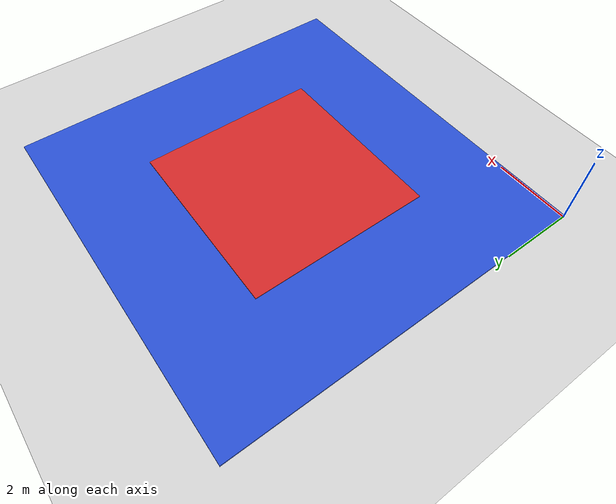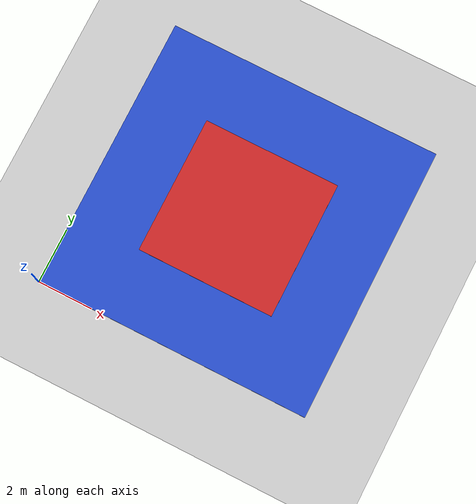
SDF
<?xml version="1.0" ?>
<sdf version="1.5">
  <world name="default">
    <!-- A global light source -->
    <include>
      <uri>model://sun</uri>
    </include>
    <!-- A ground plane -->
    <include>
      <uri>model://ground_plane</uri>
    </include>
    <include>
      <uri>model://asphalt_plane</uri>
    </include>
    <physics name='default_physics' default='0' type='ode'>
      <gravity>0 0 -9.8066</gravity>
      <ode>
        <solver>
          <type>quick</type>
          <iters>10</iters>
          <sor>1.3</sor>
          <use_dynamic_moi_rescaling>0</use_dynamic_moi_rescaling>
        </solver>
        <constraints>
          <cfm>0</cfm>
          <erp>0.2</erp>
          <contact_max_correcting_vel>100</contact_max_correcting_vel>
          <contact_surface_layer>0.001</contact_surface_layer>
        </constraints>
      </ode>
      <max_step_size>0.004</max_step_size>
      <real_time_factor>1</real_time_factor>
      <real_time_update_rate>250</real_time_update_rate>
      <magnetic_field>6.0e-6 2.3e-5 -4.2e-5</magnetic_field>
    </physics>

    <model name="blue_floor">
      <static>true</static>
      <pose>5 5 0.05 0 0 0</pose>
      <link name="blue_floor_link">
        <collision name="blue_floor_collision">
          <geometry>
            <box>
              <size>10 10 0.05</size>
            </box>
          </geometry>
        </collision>
        <visual name="blue_floor_visual">
          <geometry>
            <box>
              <size>10 10 0.05</size>
            </box>
          </geometry>
          <material>
            <script>
              <name>Gazebo/Blue</name>
              <uri>__default__</uri>
            </script>
          </material>
        </visual>
      </link>
    </model>
    <model name="red_floor">
      <static>true</static>
      <pose>5 5 0.05 0 0 0</pose>
      <link name="red_floor_link">
        <collision name="red_floor_collision">
          <geometry>
            <box>
              <size>5 5 0.1</size>
            </box>
          </geometry>
        </collision>
        <visual name="red_floor_visual">
          <geometry>
            <box>
              <size>5 5 0.1</size>
            </box>
          </geometry>
          <material>
            <script>
              <name>Gazebo/Red</name>
              <uri>__default__</uri>
            </script>
          </material>
        </visual>
      </link>
    </model>
  </world>
</sdf>
